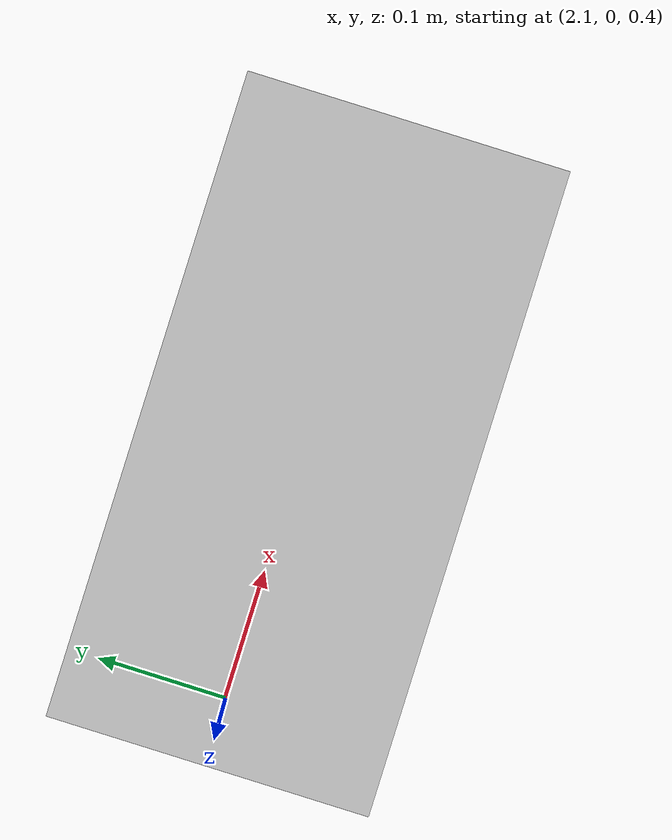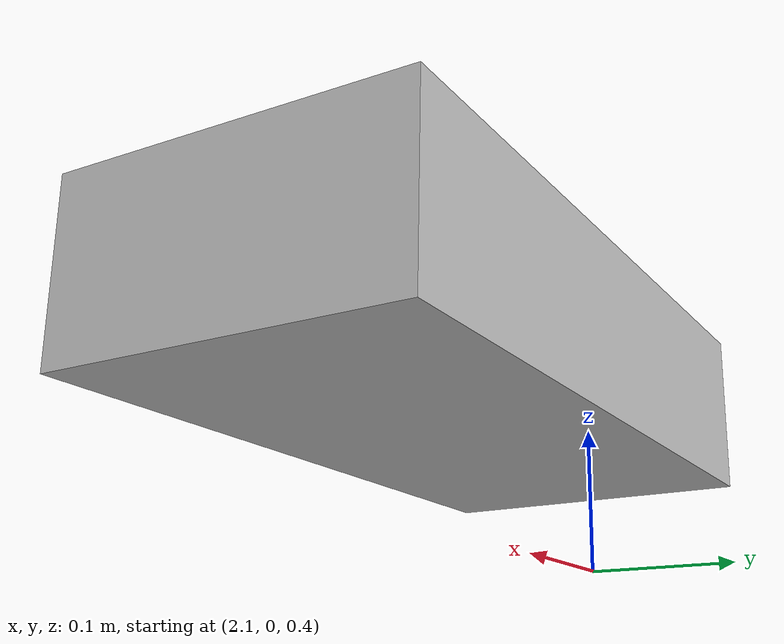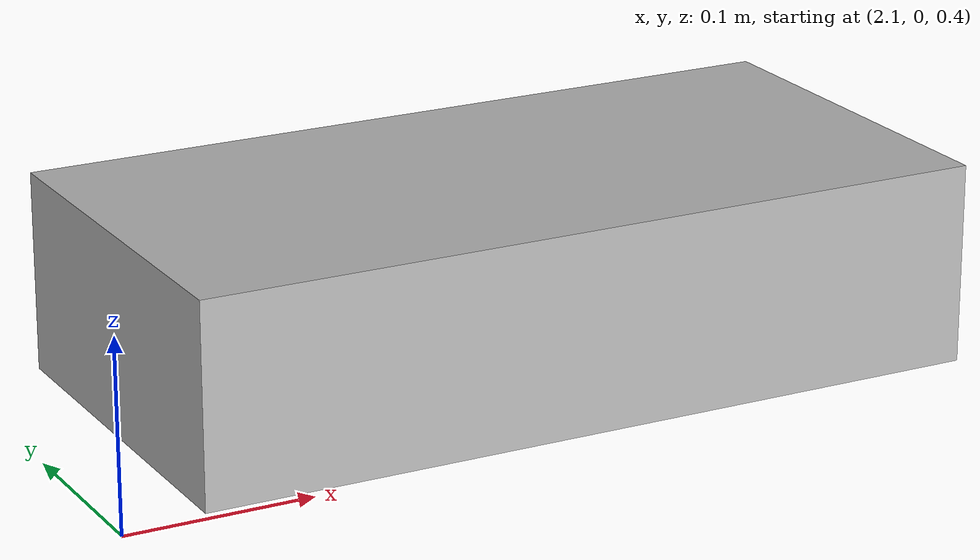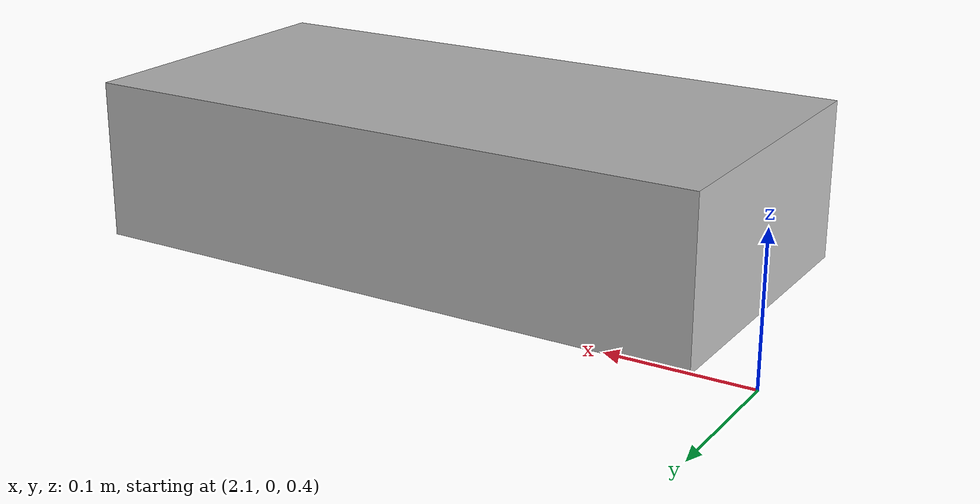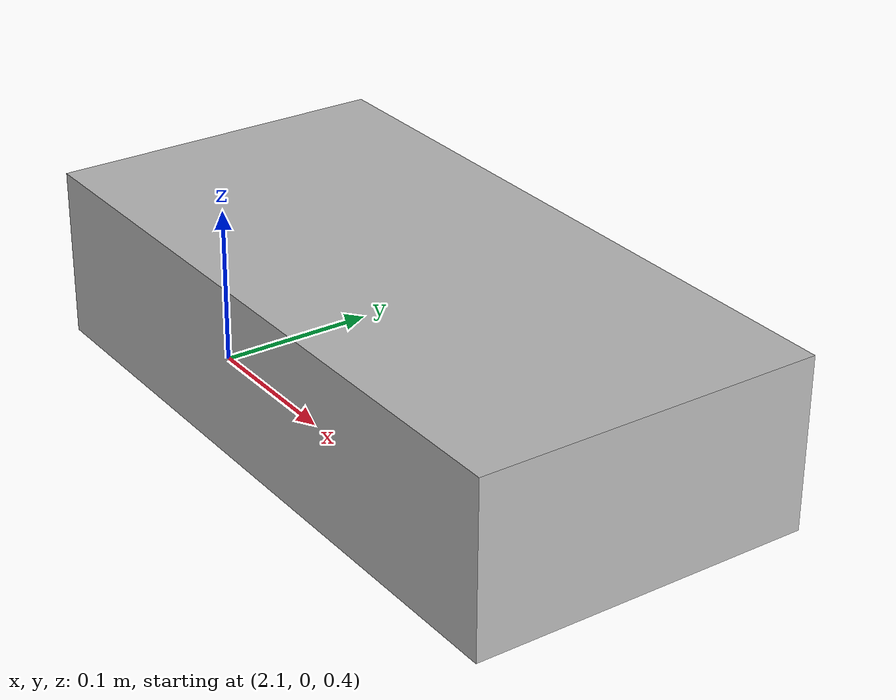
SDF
<?xml version='1.0'?>
<sdf version='1.4'>
    <model name="block">
        <static>false</static>
        <self_collide>1</self_collide>
        <link name="chassis22">
  		    <pose>2.3 0 0.5 0 0 0</pose>
            <inertial>
                <mass>0.01</mass>
            </inertial>
  		    <collision name="collision">
  		    	<geometry>
  		    		<box>
  		    			<size>.4 .2 .1</size>
  		    		</box>
  		    	</geometry>
  		    </collision>
  		    <visual name="visual">
  			  <geometry>
  				<box>
  					<size>.4 .2 .1</size>
  				</box>
  			  </geometry>
  		    </visual>
  	    </link>
    </model>
</sdf>
